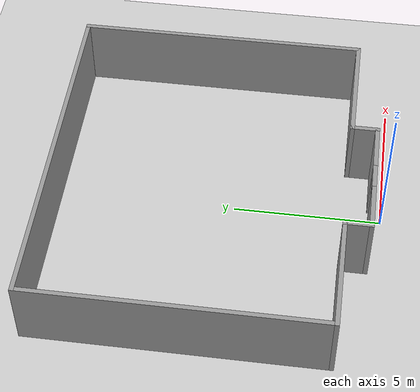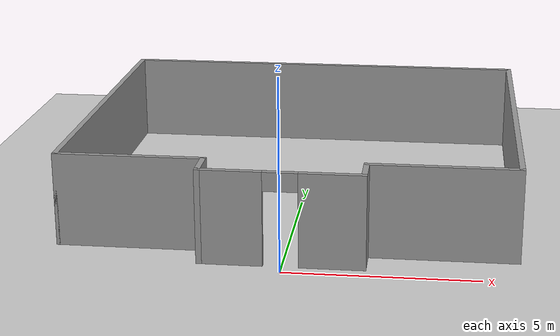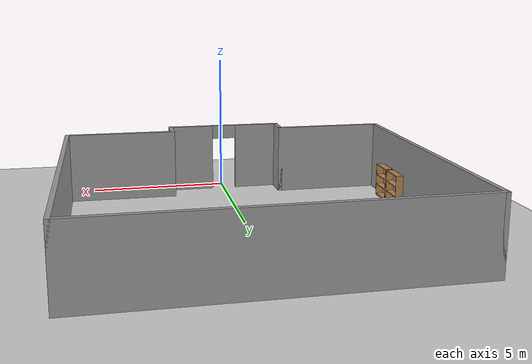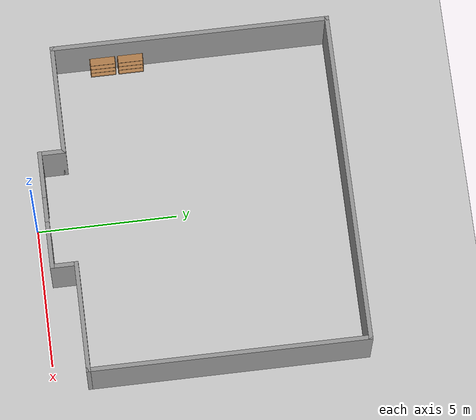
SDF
<sdf version="1.6">
 <world name="default">
  <model name="ground_plane">
   <static>1</static>
   <link name="link">
    <collision name="collision">
     <geometry><plane><normal>0 0 1</normal><size>100 100</size></plane></geometry>
     <surface>
      <contact><collide_bitmask>65535</collide_bitmask></contact>
      <friction><ode><mu>100</mu><mu2>50</mu2></ode></friction>
     </surface>
    </collision>
    <visual name="visual">
     <cast_shadows>0</cast_shadows>
     <geometry><plane><normal>0 0 1</normal><size>100 100</size></plane></geometry>
     <material>
      <script><uri>file://media/materials/scripts/gazebo.material</uri><name>Gazebo/Grey</name></script>
     </material>
    </visual>
   </link>
  </model>
  <model name="husky_SAGAT_second_half_docker">
   <pose>-0.03084 5.75394 0 0 -0 0</pose>
   <link name="Wall_10">
    <collision name="Wall_10_Collision">
     <geometry><box><size>4 0.15 2.5</size></box></geometry>
     <pose>0 0 1.25 0 -0 0</pose>
    </collision>
    <visual name="Wall_10_Visual">
     <pose>0 0 1.25 0 -0 0</pose>
     <geometry><box><size>4 0.15 2.5</size></box></geometry>
     <material>
      <script><uri>file://media/materials/scripts/gazebo.material</uri><name>Gazebo/Grey</name></script>
      <ambient>1 1 1 1</ambient>
     </material>
     <meta><layer>0</layer></meta>
    </visual>
    <pose>-4 -4.5 0 0 -0 0</pose>
   </link>
   <link name="Wall_12">
    <collision name="Wall_12_Collision">
     <geometry><box><size>4 0.15 2.5</size></box></geometry>
     <pose>0 0 1.25 0 -0 0</pose>
    </collision>
    <visual name="Wall_12_Visual">
     <pose>0 0 1.25 0 -0 0</pose>
     <geometry><box><size>4 0.15 2.5</size></box></geometry>
     <material>
      <script><uri>file://media/materials/scripts/gazebo.material</uri><name>Gazebo/Grey</name></script>
      <ambient>1 1 1 1</ambient>
     </material>
     <meta><layer>0</layer></meta>
    </visual>
    <pose>4 -4.5 0 0 -0 3.14159</pose>
   </link>
   <link name="Wall_14">
    <collision name="Wall_14_Collision">
     <geometry><box><size>1 0.15 2.5</size></box></geometry>
     <pose>0 0 1.25 0 -0 0</pose>
    </collision>
    <visual name="Wall_14_Visual">
     <pose>0 0 1.25 0 -0 0</pose>
     <geometry><box><size>1 0.15 2.5</size></box></geometry>
     <material>
      <script><uri>file://media/materials/scripts/gazebo.material</uri><name>Gazebo/Grey</name></script>
      <ambient>1 1 1 1</ambient>
     </material>
     <meta><layer>0</layer></meta>
    </visual>
    <pose>-2.075 -4.925 0 0 -0 -1.5708</pose>
   </link>
   <link name="Wall_2">
    <collision name="Wall_2_Collision">
     <geometry><box><size>10 0.15 2.5</size></box></geometry>
     <pose>0 0 1.25 0 -0 0</pose>
    </collision>
    <visual name="Wall_2_Visual">
     <pose>0 0 1.25 0 -0 0</pose>
     <geometry><box><size>10 0.15 2.5</size></box></geometry>
     <material>
      <script><uri>file://media/materials/scripts/gazebo.material</uri><name>Gazebo/Grey</name></script>
      <ambient>1 1 1 1</ambient>
     </material>
     <meta><layer>0</layer></meta>
    </visual>
    <pose>-5.925 0.425 0 0 -0 1.5708</pose>
   </link>
   <link name="Wall_20">
    <collision name="Wall_20_Collision">
     <geometry><box><size>1 0.15 2.5</size></box></geometry>
     <pose>0 0 1.25 0 -0 0</pose>
    </collision>
    <visual name="Wall_20_Visual">
     <pose>0 0 1.25 0 -0 0</pose>
     <geometry><box><size>1 0.15 2.5</size></box></geometry>
     <material>
      <script><uri>file://media/materials/scripts/gazebo.material</uri><name>Gazebo/Grey</name></script>
      <ambient>1 1 1 1</ambient>
     </material>
     <meta><layer>0</layer></meta>
    </visual>
    <pose>2.075 -4.925 0 0 -0 -1.5708</pose>
   </link>
   <link name="Wall_21">
    <pose>0 -5.35 0 0 -0 3.14159</pose>
    <visual name="Wall_21_Visual_0">
     <pose>-1.29994 0 1.25 0 -0 0</pose>
     <geometry><box><size>1.70011 0.15 2.5</size></box></geometry>
     <material>
      <script><uri>file://media/materials/scripts/gazebo.material</uri><name>Gazebo/Grey</name></script>
      <ambient>1 1 1 1</ambient>
     </material>
     <meta><layer>0</layer></meta>
    </visual>
    <collision name="Wall_21_Collision_0">
     <geometry><box><size>1.70011 0.15 2.5</size></box></geometry>
     <pose>-1.29994 0 1.25 0 -0 0</pose>
    </collision>
    <visual name="Wall_21_Visual_1">
     <pose>1.30006 0 1.25 0 -0 0</pose>
     <geometry><box><size>1.69989 0.15 2.5</size></box></geometry>
     <material>
      <script><uri>file://media/materials/scripts/gazebo.material</uri><name>Gazebo/Grey</name></script>
      <ambient>1 1 1 1</ambient>
     </material>
     <meta><layer>0</layer></meta>
    </visual>
    <collision name="Wall_21_Collision_1">
     <geometry><box><size>1.69989 0.15 2.5</size></box></geometry>
     <pose>1.30006 0 1.25 0 -0 0</pose>
    </collision>
    <visual name="Wall_21_Visual_2">
     <pose>0.000113 0 2.25 0 -0 0</pose>
     <geometry><box><size>0.9 0.15 0.5</size></box></geometry>
     <material>
      <script><uri>file://media/materials/scripts/gazebo.material</uri><name>Gazebo/Grey</name></script>
      <ambient>1 1 1 1</ambient>
     </material>
     <meta><layer>0</layer></meta>
    </visual>
    <collision name="Wall_21_Collision_2">
     <geometry><box><size>0.9 0.15 0.5</size></box></geometry>
     <pose>0.000113 0 2.25 0 -0 0</pose>
    </collision>
   </link>
   <link name="Wall_4">
    <collision name="Wall_4_Collision">
     <geometry><box><size>12 0.15 2.5</size></box></geometry>
     <pose>0 0 1.25 0 -0 0</pose>
    </collision>
    <visual name="Wall_4_Visual">
     <pose>0 0 1.25 0 -0 0</pose>
     <geometry><box><size>12 0.15 2.5</size></box></geometry>
     <material>
      <script><uri>file://media/materials/scripts/gazebo.material</uri><name>Gazebo/Grey</name></script>
      <ambient>1 1 1 1</ambient>
     </material>
     <meta><layer>0</layer></meta>
    </visual>
    <pose>0 5.35 0 0 -0 0</pose>
   </link>
   <link name="Wall_7">
    <collision name="Wall_7_Collision">
     <geometry><box><size>10 0.15 2.5</size></box></geometry>
     <pose>0 0 1.25 0 -0 0</pose>
    </collision>
    <visual name="Wall_7_Visual">
     <pose>0 0 1.25 0 -0 0</pose>
     <geometry><box><size>10 0.15 2.5</size></box></geometry>
     <material>
      <script><uri>file://media/materials/scripts/gazebo.material</uri><name>Gazebo/Grey</name></script>
      <ambient>1 1 1 1</ambient>
     </material>
     <meta><layer>0</layer></meta>
    </visual>
    <pose>5.925 0.425 0 0 -0 -1.5708</pose>
   </link>
   <static>1</static>
  </model>
  <model name="bookshelf">
   <static>1</static>
   <link name="link">
    <inertial><mass>1</mass></inertial>
    <collision name="back">
     <pose>0 0.005 0.6 0 -0 0</pose>
     <geometry><box><size>0.9 0.01 1.2</size></box></geometry>
    </collision>
    <visual name="visual1">
     <pose>0 0.005 0.6 0 -0 0</pose>
     <geometry><box><size>0.9 0.01 1.2</size></box></geometry>
     <material>
      <script><uri>file://media/materials/scripts/gazebo.material</uri><name>Gazebo/Wood</name></script>
     </material>
    </visual>
    <collision name="left_side">
     <pose>0.45 -0.195 0.6 0 -0 0</pose>
     <geometry><box><size>0.02 0.4 1.2</size></box></geometry>
    </collision>
    <visual name="visual2">
     <pose>0.45 -0.195 0.6 0 -0 0</pose>
     <geometry><box><size>0.02 0.4 1.2</size></box></geometry>
     <material>
      <script><uri>file://media/materials/scripts/gazebo.material</uri><name>Gazebo/Wood</name></script>
     </material>
    </visual>
    <collision name="right_side">
     <pose>-0.45 -0.195 0.6 0 -0 0</pose>
     <geometry><box><size>0.02 0.4 1.2</size></box></geometry>
    </collision>
    <visual name="visual3">
     <pose>-0.45 -0.195 0.6 0 -0 0</pose>
     <geometry><box><size>0.02 0.4 1.2</size></box></geometry>
     <material>
      <script><uri>file://media/materials/scripts/gazebo.material</uri><name>Gazebo/Wood</name></script>
     </material>
    </visual>
    <collision name="bottom">
     <pose>0 -0.195 0.03 0 -0 0</pose>
     <geometry><box><size>0.88 0.4 0.06</size></box></geometry>
    </collision>
    <visual name="visual4">
     <pose>0 -0.195 0.03 0 -0 0</pose>
     <geometry><box><size>0.88 0.4 0.06</size></box></geometry>
     <material>
      <script><uri>file://media/materials/scripts/gazebo.material</uri><name>Gazebo/Wood</name></script>
     </material>
    </visual>
    <collision name="top">
     <pose>0 -0.195 1.19 0 -0 0</pose>
     <geometry><box><size>0.88 0.4 0.02</size></box></geometry>
    </collision>
    <visual name="visual5">
     <pose>0 -0.195 1.19 0 -0 0</pose>
     <geometry><box><size>0.88 0.4 0.02</size></box></geometry>
     <material>
      <script><uri>file://media/materials/scripts/gazebo.material</uri><name>Gazebo/Wood</name></script>
     </material>
    </visual>
    <collision name="low_shelf">
     <pose>0 -0.195 0.43 0 -0 0</pose>
     <geometry><box><size>0.88 0.4 0.02</size></box></geometry>
    </collision>
    <visual name="visual6">
     <pose>0 -0.195 0.43 0 -0 0</pose>
     <geometry><box><size>0.88 0.4 0.02</size></box></geometry>
     <material>
      <script><uri>file://media/materials/scripts/gazebo.material</uri><name>Gazebo/Wood</name></script>
     </material>
    </visual>
    <collision name="high_shelf">
     <pose>0 -0.195 0.8 0 -0 0</pose>
     <geometry><box><size>0.88 0.4 0.02</size></box></geometry>
    </collision>
    <visual name="visual7">
     <pose>0 -0.195 0.8 0 -0 0</pose>
     <geometry><box><size>0.88 0.4 0.02</size></box></geometry>
     <material>
      <script><uri>file://media/materials/scripts/gazebo.material</uri><name>Gazebo/Wood</name></script>
     </material>
    </visual>
   </link>
   <pose>-6 4 0 0 -0 1.5708</pose>
  </model>
  <model name="bookshelf_1">
   <static>1</static>
   <link name="link">
    <inertial><mass>1</mass></inertial>
    <collision name="back">
     <pose>0 0.005 0.6 0 -0 0</pose>
     <geometry><box><size>0.9 0.01 1.2</size></box></geometry>
    </collision>
    <visual name="visual1">
     <pose>0 0.005 0.6 0 -0 0</pose>
     <geometry><box><size>0.9 0.01 1.2</size></box></geometry>
     <material>
      <script><uri>file://media/materials/scripts/gazebo.material</uri><name>Gazebo/Wood</name></script>
     </material>
    </visual>
    <collision name="left_side">
     <pose>0.45 -0.195 0.6 0 -0 0</pose>
     <geometry><box><size>0.02 0.4 1.2</size></box></geometry>
    </collision>
    <visual name="visual2">
     <pose>0.45 -0.195 0.6 0 -0 0</pose>
     <geometry><box><size>0.02 0.4 1.2</size></box></geometry>
     <material>
      <script><uri>file://media/materials/scripts/gazebo.material</uri><name>Gazebo/Wood</name></script>
     </material>
    </visual>
    <collision name="right_side">
     <pose>-0.45 -0.195 0.6 0 -0 0</pose>
     <geometry><box><size>0.02 0.4 1.2</size></box></geometry>
    </collision>
    <visual name="visual3">
     <pose>-0.45 -0.195 0.6 0 -0 0</pose>
     <geometry><box><size>0.02 0.4 1.2</size></box></geometry>
     <material>
      <script><uri>file://media/materials/scripts/gazebo.material</uri><name>Gazebo/Wood</name></script>
     </material>
    </visual>
    <collision name="bottom">
     <pose>0 -0.195 0.03 0 -0 0</pose>
     <geometry><box><size>0.88 0.4 0.06</size></box></geometry>
    </collision>
    <visual name="visual4">
     <pose>0 -0.195 0.03 0 -0 0</pose>
     <geometry><box><size>0.88 0.4 0.06</size></box></geometry>
     <material>
      <script><uri>file://media/materials/scripts/gazebo.material</uri><name>Gazebo/Wood</name></script>
     </material>
    </visual>
    <collision name="top">
     <pose>0 -0.195 1.19 0 -0 0</pose>
     <geometry><box><size>0.88 0.4 0.02</size></box></geometry>
    </collision>
    <visual name="visual5">
     <pose>0 -0.195 1.19 0 -0 0</pose>
     <geometry><box><size>0.88 0.4 0.02</size></box></geometry>
     <material>
      <script><uri>file://media/materials/scripts/gazebo.material</uri><name>Gazebo/Wood</name></script>
     </material>
    </visual>
    <collision name="low_shelf">
     <pose>0 -0.195 0.43 0 -0 0</pose>
     <geometry><box><size>0.88 0.4 0.02</size></box></geometry>
    </collision>
    <visual name="visual6">
     <pose>0 -0.195 0.43 0 -0 0</pose>
     <geometry><box><size>0.88 0.4 0.02</size></box></geometry>
     <material>
      <script><uri>file://media/materials/scripts/gazebo.material</uri><name>Gazebo/Wood</name></script>
     </material>
    </visual>
    <collision name="high_shelf">
     <pose>0 -0.195 0.8 0 -0 0</pose>
     <geometry><box><size>0.88 0.4 0.02</size></box></geometry>
    </collision>
    <visual name="visual7">
     <pose>0 -0.195 0.8 0 -0 0</pose>
     <geometry><box><size>0.88 0.4 0.02</size></box></geometry>
     <material>
      <script><uri>file://media/materials/scripts/gazebo.material</uri><name>Gazebo/Wood</name></script>
     </material>
    </visual>
   </link>
   <pose>-6 3 0 0 -0 1.5708</pose>
  </model>
 </world>
</sdf>
